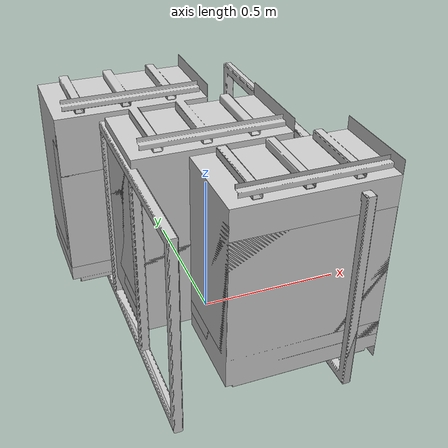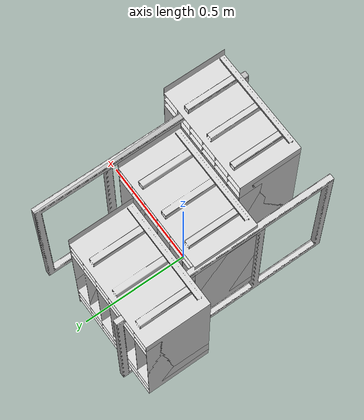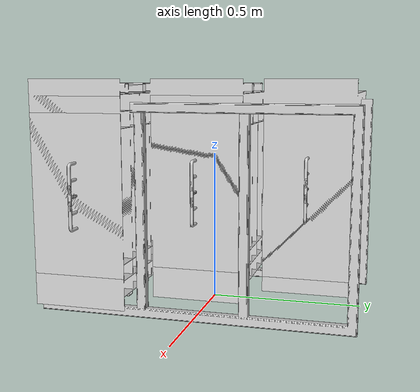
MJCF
<?xml version="1.0" ?>
<mujoco model="cabinet_with_drawers">
  <asset>
    <!-- Cabinet body meshes -->
    <mesh name="cabinet_visual" file="../meshes/drawer_base_visual.stl"/>
    <mesh name="cabinet_collision" file="../meshes/drawer_base_collision.stl"/>

    <!-- Drawer meshes -->
    <mesh name="drawer_visual" file="../meshes/drawers_visual.stl"/>
    <mesh name="drawer_collision" file="../meshes/drawers_collision.stl"/>
  </asset>

  <worldbody>
    <body>
      <body name="object">
        <!-- ADD FREE JOINT HERE for positioning the cabinet in world -->
        <joint type="free" damping="0.0005"/>

        <!-- Cabinet body geoms -->
        <geom name="cabinet_visual" type="mesh" mesh="cabinet_visual"
              rgba="0.8 0.8 0.8 1.0" contype="0" conaffinity="0" group="1" density="1"/>
        <geom name="cabinet_collision" type="mesh" mesh="cabinet_collision"
              rgba="0.5 0.5 0.5 0.3" density="500.0" friction="0.95 0.3 0.1"
              condim="4" solref="0.001 1" solimp="0.998 0.998 0.001" group="0"/>

        <!-- Drawer 1 (top) -->
        <body name="drawer1" pos="0 0 0.15">
          <inertial pos="0 0 0" mass="0.5" diaginertia="0.01 0.01 0.01"/>
          <joint name="drawer1_joint" type="slide" axis="1 0 0" range="0 0.35"
                 limited="true" damping="10" frictionloss="1"/>

          <geom name="drawer1_visual" type="mesh" mesh="drawer_visual"
                rgba="0.8 0.8 0.8 1.0" contype="0" conaffinity="0" group="1" density="1"/>
          <geom name="drawer1_collision" type="mesh" mesh="drawer_collision"
                rgba="0.5 0.5 0.5 0.3" density="500.0" friction="0.95 0.3 0.1"
                condim="4" solref="0.001 1" solimp="0.998 0.998 0.001" group="0"/>
        </body>

        <!-- Drawer 2 (middle) -->
        <body name="drawer2" pos="0 0 0.10">
          <inertial pos="0 0 0" mass="0.5" diaginertia="0.01 0.01 0.01"/>
          <joint name="drawer2_joint" type="slide" axis="1 0 0" range="0 0.35"
                 limited="true" damping="10" frictionloss="1"/>

          <geom name="drawer2_visual" type="mesh" mesh="drawer_visual"
                rgba="0.8 0.8 0.8 1.0" contype="0" conaffinity="0" group="1" density="1"/>
          <geom name="drawer2_collision" type="mesh" mesh="drawer_collision"
                rgba="0.5 0.5 0.5 0.3" density="500.0" friction="0.95 0.3 0.1"
                condim="4" solref="0.001 1" solimp="0.998 0.998 0.001" group="0"/>
        </body>

        <!-- Drawer 3 (bottom) -->
        <body name="drawer3" pos="0 0 0.05">
          <inertial pos="0 0 0" mass="0.5" diaginertia="0.01 0.01 0.01"/>
          <joint name="drawer3_joint" type="slide" axis="1 0 0" range="0 0.35"
                 limited="true" damping="10" frictionloss="1"/>

          <geom name="drawer3_visual" type="mesh" mesh="drawer_visual"
                rgba="0.8 0.8 0.8 1.0" contype="0" conaffinity="0" group="1" density="1"/>
          <geom name="drawer3_collision" type="mesh" mesh="drawer_collision"
                rgba="0.5 0.5 0.5 0.3" density="500.0" friction="0.95 0.3 0.1"
                condim="4" solref="0.001 1" solimp="0.998 0.998 0.001" group="0"/>
        </body>
      </body>

      <!-- Sites -->
      <site rgba="0 0 0 0" size="0.005" pos="0 0 0" name="bottom_site"/>
      <site rgba="0 0 0 0" size="0.005" pos="0 0 0.2" name="top_site"/>
      <site rgba="0 0 0 0" size="0.005" pos="0.05 0 0.1" name="horizontal_radius_site"/>
    </body>
  </worldbody>
</mujoco>
